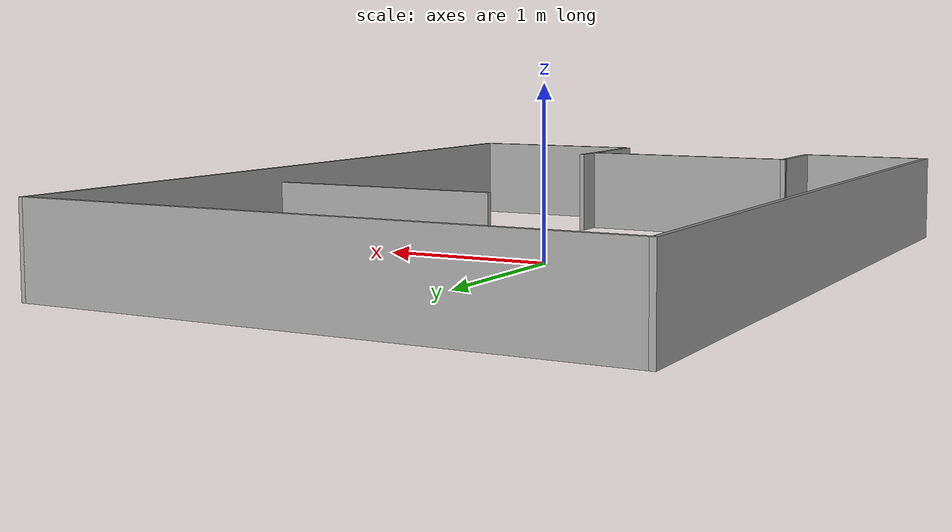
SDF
<?xml version='1.0'?>
<sdf version='1.6'>
  <model name='simplified_arena'>
    <pose frame=''>-0.003109 0.006085 0 0 -0 0</pose>
    <link name='Wall_0'>
      <collision name='Wall_0_Collision'>
        <geometry>
          <box>
            <size>1.22 0.03 0.5</size>
          </box>
        </geometry>
        <pose frame=''>0 0 0.25 0 -0 0</pose>
      </collision>
      <visual name='Wall_0_Visual'>
        <pose frame=''>0 0 0.25 0 -0 0</pose>
        <geometry>
          <box>
            <size>1.22 0.03 0.5</size>
          </box>
        </geometry>
        <material>
          <script>
            <uri>file://media/materials/scripts/gazebo.material</uri>
            <name>Gazebo/Grey</name>
          </script>
          <ambient>1 1 1 1</ambient>
        </material>
        <meta>
          <layer>0</layer>
        </meta>
      </visual>
      <pose frame=''>0.372573 1.04353 0 0 -0 0</pose>
    </link>
    <link name='Wall_13'>
      <collision name='Wall_13_Collision'>
        <geometry>
          <box>
            <size>0.500359 0.03 0.5</size>
          </box>
        </geometry>
        <pose frame=''>0 0 0.25 0 -0 0</pose>
      </collision>
      <visual name='Wall_13_Visual'>
        <pose frame=''>0 0 0.25 0 -0 0</pose>
        <geometry>
          <box>
            <size>0.500359 0.03 0.5</size>
          </box>
        </geometry>
        <material>
          <script>
            <uri>file://media/materials/scripts/gazebo.material</uri>
            <name>Gazebo/Grey</name>
          </script>
          <ambient>1 1 1 1</ambient>
        </material>
        <meta>
          <layer>0</layer>
        </meta>
      </visual>
      <pose frame=''>-0.824891 -1.89809 0 0 -0 1.5708</pose>
    </link>
    <link name='Wall_15'>
      <collision name='Wall_15_Collision'>
        <geometry>
          <box>
            <size>1.32 0.03 0.5</size>
          </box>
        </geometry>
        <pose frame=''>0 0 0.25 0 -0 0</pose>
      </collision>
      <visual name='Wall_15_Visual'>
        <pose frame=''>0 0 0.25 0 -0 0</pose>
        <geometry>
          <box>
            <size>1.32 0.03 0.5</size>
          </box>
        </geometry>
        <material>
          <script>
            <uri>file://media/materials/scripts/gazebo.material</uri>
            <name>Gazebo/Grey</name>
          </script>
          <ambient>1 1 1 1</ambient>
        </material>
        <meta>
          <layer>0</layer>
        </meta>
      </visual>
      <pose frame=''>-0.179891 -1.66322 0 0 -0 -0.000209</pose>
    </link>
    <link name='Wall_17'>
      <collision name='Wall_17_Collision'>
        <geometry>
          <box>
            <size>0.75 0.03 0.5</size>
          </box>
        </geometry>
        <pose frame=''>0 0 0.25 0 -0 0</pose>
      </collision>
      <visual name='Wall_17_Visual'>
        <pose frame=''>0 0 0.25 0 -0 0</pose>
        <geometry>
          <box>
            <size>0.75 0.03 0.5</size>
          </box>
        </geometry>
        <material>
          <script>
            <uri>file://media/materials/scripts/gazebo.material</uri>
            <name>Gazebo/Grey</name>
          </script>
          <ambient>1 1 1 1</ambient>
        </material>
        <meta>
          <layer>0</layer>
        </meta>
      </visual>
      <pose frame=''>0.487109 -1.85709 0 0 -0 1.5708</pose>
    </link>
    <link name='Wall_2'>
      <collision name='Wall_2_Collision'>
        <geometry>
          <box>
            <size>3.21956 0.03 0.5</size>
          </box>
        </geometry>
        <pose frame=''>0 0 0.25 0 -0 0</pose>
      </collision>
      <visual name='Wall_2_Visual'>
        <pose frame=''>0 0 0.25 0 -0 0</pose>
        <geometry>
          <box>
            <size>3.21956 0.03 0.5</size>
          </box>
        </geometry>
        <material>
          <script>
            <uri>file://media/materials/scripts/gazebo.material</uri>
            <name>Gazebo/Grey</name>
          </script>
          <ambient>1 1 1 1</ambient>
        </material>
        <meta>
          <layer>0</layer>
        </meta>
      </visual>
      <pose frame=''>0 2.21674 0 0 -0 -0.000109</pose>
    </link>
    <link name='Wall_3'>
      <collision name='Wall_3_Collision'>
        <geometry>
          <box>
            <size>4.46 0.03 0.5</size>
          </box>
        </geometry>
        <pose frame=''>0 0 0.25 0 -0 0</pose>
      </collision>
      <visual name='Wall_3_Visual'>
        <pose frame=''>0 0 0.25 0 -0 0</pose>
        <geometry>
          <box>
            <size>4.46 0.03 0.5</size>
          </box>
        </geometry>
        <material>
          <script>
            <uri>file://media/materials/scripts/gazebo.material</uri>
            <name>Gazebo/Grey</name>
          </script>
          <ambient>1 1 1 1</ambient>
        </material>
        <meta>
          <layer>0</layer>
        </meta>
      </visual>
      <pose frame=''>1.59489 0.001567 0 0 -0 -1.5708</pose>
    </link>
    <link name='Wall_5'>
      <collision name='Wall_5_Collision'>
        <geometry>
          <box>
            <size>1.13 0.03 0.5</size>
          </box>
        </geometry>
        <pose frame=''>0 0 0.25 0 -0 0</pose>
      </collision>
      <visual name='Wall_5_Visual'>
        <pose frame=''>0 0 0.25 0 -0 0</pose>
        <geometry>
          <box>
            <size>1.13 0.03 0.5</size>
          </box>
        </geometry>
        <material>
          <script>
            <uri>file://media/materials/scripts/gazebo.material</uri>
            <name>Gazebo/Grey</name>
          </script>
          <ambient>1 1 1 1</ambient>
        </material>
        <meta>
          <layer>0</layer>
        </meta>
      </visual>
      <pose frame=''>1.03717 -2.21693 0 0 -0 -3.14132</pose>
    </link>
    <link name='Wall_7'>
      <collision name='Wall_7_Collision'>
        <geometry>
          <box>
            <size>4.38035 0.03 0.5</size>
          </box>
        </geometry>
        <pose frame=''>0 0 0.25 0 -0 0</pose>
      </collision>
      <visual name='Wall_7_Visual'>
        <pose frame=''>0 0 0.25 0 -0 0</pose>
        <geometry>
          <box>
            <size>4.38035 0.03 0.5</size>
          </box>
        </geometry>
        <material>
          <script>
            <uri>file://media/materials/scripts/gazebo.material</uri>
            <name>Gazebo/Grey</name>
          </script>
          <ambient>1 1 1 1</ambient>
        </material>
        <meta>
          <layer>0</layer>
        </meta>
      </visual>
      <pose frame=''>-1.59489 0.041915 0 0 -0 -1.5708</pose>
    </link>
    <link name='Wall_8'>
      <collision name='Wall_8_Collision'>
        <geometry>
          <box>
            <size>0.8 0.03 0.5</size>
          </box>
        </geometry>
        <pose frame=''>0 0 0.25 0 -0 0</pose>
      </collision>
      <visual name='Wall_8_Visual'>
        <pose frame=''>0 0 0.25 0 -0 0</pose>
        <geometry>
          <box>
            <size>0.8 0.03 0.5</size>
          </box>
        </geometry>
        <material>
          <script>
            <uri>file://media/materials/scripts/gazebo.material</uri>
            <name>Gazebo/Grey</name>
          </script>
          <ambient>1 1 1 1</ambient>
        </material>
        <meta>
          <layer>0</layer>
        </meta>
      </visual>
      <pose frame=''>-1.20989 -2.13308 0 0 -0 0</pose>
    </link>
    <static>1</static>
  </model>
</sdf>
